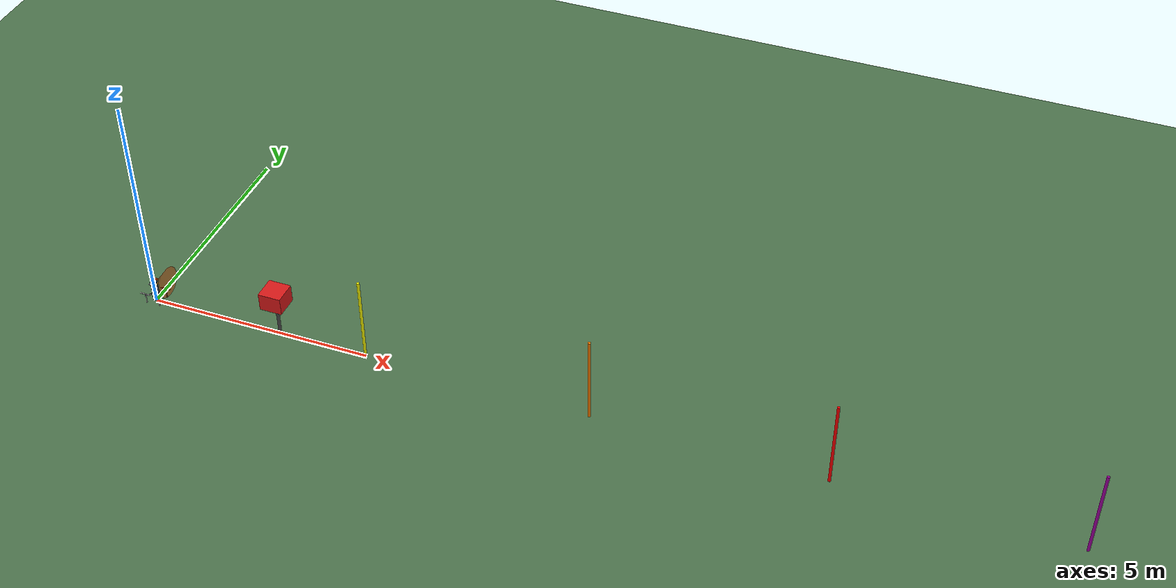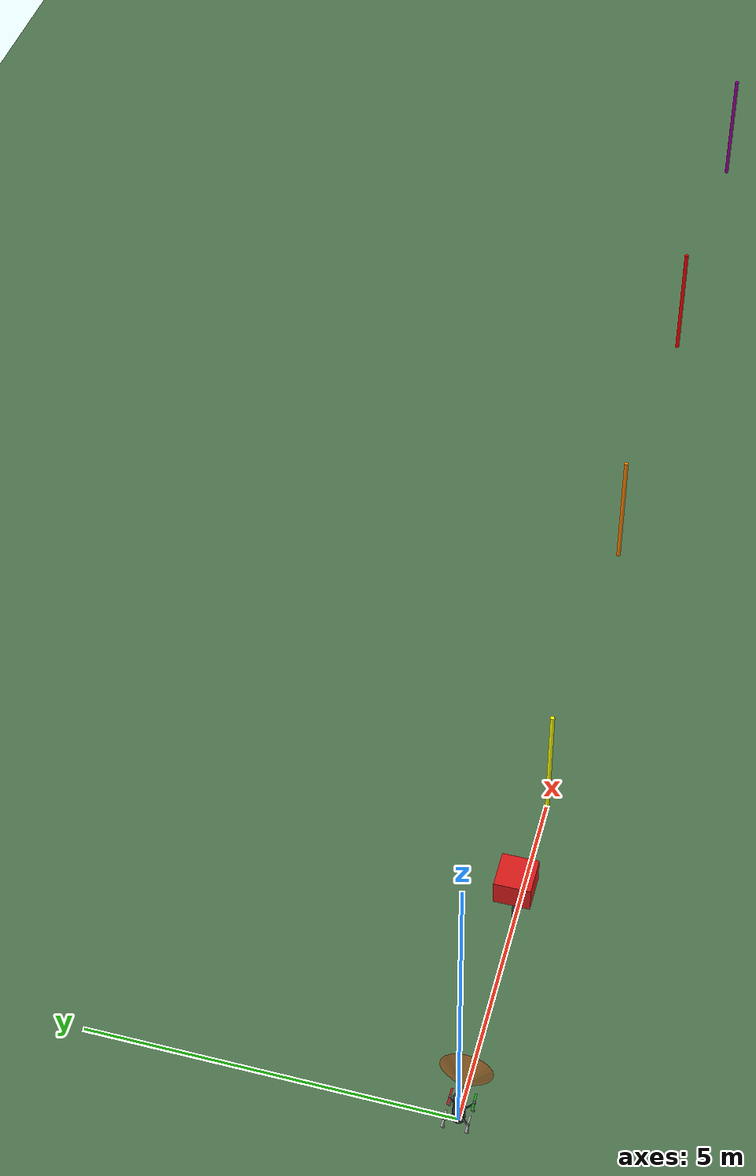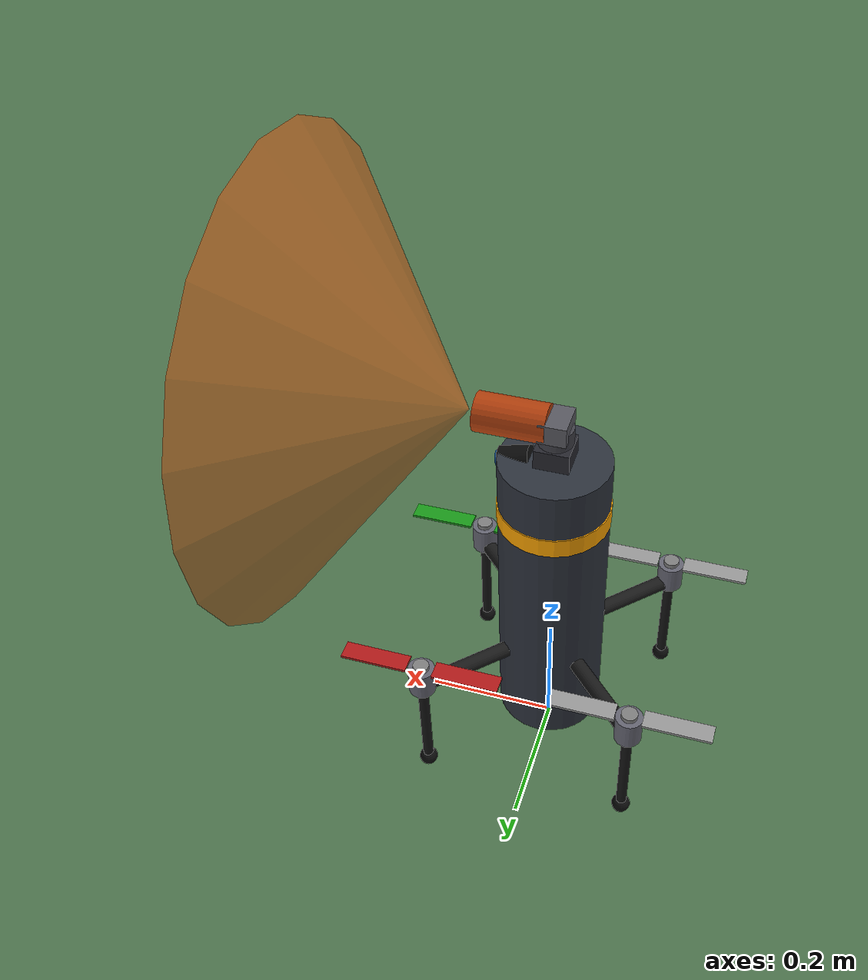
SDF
<?xml version="1.0" ?>
<sdf version="1.9">
  <world name="bullet_net_test">
    <physics name="1ms" type="ignore">
      <max_step_size>0.001</max_step_size>
      <real_time_factor>1.0</real_time_factor>
    </physics>

    <plugin filename="gz-sim-physics-system"
      name="gz::sim::systems::Physics">
    </plugin>
    <plugin filename="gz-sim-user-commands-system"
      name="gz::sim::systems::UserCommands">
    </plugin>
    <plugin filename="gz-sim-scene-broadcaster-system"
      name="gz::sim::systems::SceneBroadcaster">
    </plugin>
    <plugin filename="gz-sim-imu-system"
      name="gz::sim::systems::Imu">
    </plugin>
    <plugin filename="gz-sim-navsat-system"
      name="gz::sim::systems::NavSat">
    </plugin>
    <plugin filename="gz-sim-sensors-system"
      name="gz::sim::systems::Sensors">
      <render_engine>ogre2</render_engine>
    </plugin>
    <plugin filename="gz-sim-contact-system"
      name="gz::sim::systems::Contact">
    </plugin>

    <plugin filename="NetCapturePlugin" name="avci::NetCapturePlugin">
      <net_model>net_cone</net_model>
      <net_link>net_link</net_link>
      <target_model>target_box</target_model>
      <capture_topic>/net/captured</capture_topic>
      <min_speed>1.0</min_speed>
    </plugin>

    <gravity>0 0 -9.8</gravity>
    <magnetic_field>6.0e-6 2.3e-5 -4.2e-5</magnetic_field>
    <atmosphere type="adiabatic"/>

    <scene>
      <ambient>0.5 0.5 0.5</ambient>
      <background>0.6 0.7 0.9</background>
      <shadows>false</shadows>
    </scene>

    <light type="directional" name="sun">
      <cast_shadows>false</cast_shadows>
      <pose>0 0 10 0 0 0</pose>
      <diffuse>0.9 0.9 0.9 1</diffuse>
      <specular>0.2 0.2 0.2 1</specular>
      <direction>-0.5 0.1 -0.9</direction>
    </light>

    <model name="ground_plane">
      <static>true</static>
      <link name="link">
        <collision name="collision">
          <geometry><plane><normal>0 0 1</normal><size>500 500</size></plane></geometry>
        </collision>
        <visual name="visual">
          <geometry><plane><normal>0 0 1</normal><size>500 500</size></plane></geometry>
          <material>
            <ambient>0.3 0.45 0.3 1</ambient>
            <diffuse>0.3 0.45 0.3 1</diffuse>
          </material>
        </visual>
      </link>
    </model>

    <!-- Menzil olcumu icin her 5 m'de bir isaret direk -->
    <model name="range_markers">
      <static>true</static>
      <link name="link">
        <visual name="m5">
          <pose>5 0 1 0 0 0</pose>
          <geometry><cylinder><radius>0.03</radius><length>2</length></cylinder></geometry>
          <material><ambient>1 1 0 1</ambient><diffuse>1 1 0 1</diffuse></material>
        </visual>
        <visual name="m10">
          <pose>10 0 1 0 0 0</pose>
          <geometry><cylinder><radius>0.03</radius><length>2</length></cylinder></geometry>
          <material><ambient>1 0.5 0 1</ambient><diffuse>1 0.5 0 1</diffuse></material>
        </visual>
        <visual name="m15">
          <pose>15 0 1 0 0 0</pose>
          <geometry><cylinder><radius>0.03</radius><length>2</length></cylinder></geometry>
          <material><ambient>1 0 0 1</ambient><diffuse>1 0 0 1</diffuse></material>
        </visual>
        <visual name="m20">
          <pose>20 0 1 0 0 0</pose>
          <geometry><cylinder><radius>0.03</radius><length>2</length></cylinder></geometry>
          <material><ambient>0.6 0 0.6 1</ambient><diffuse>0.6 0 0.6 1</diffuse></material>
        </visual>
      </link>
    </model>

    <include>
      <uri>model://bullet_net_interceptor</uri>
      <name>bullet_net_interceptor</name>
      <pose>0 0 0.30 0 0 0</pose>
    </include>

    <include>
      <uri>model://net_cone</uri>
      <name>net_cone</name>
      <pose>0.12 0 0.61 0 0 0</pose>
    </include>

    <model name="target_pole">
      <static>true</static>
      <pose>3 0 0 0 0 0</pose>
      <link name="link">
        <collision name="collision">
          <pose>0 0 0.40 0 0 0</pose>
          <geometry><cylinder><radius>0.035</radius><length>0.80</length></cylinder></geometry>
        </collision>
        <visual name="visual">
          <pose>0 0 0.40 0 0 0</pose>
          <geometry><cylinder><radius>0.035</radius><length>0.80</length></cylinder></geometry>
          <material><ambient>0.3 0.3 0.3 1</ambient><diffuse>0.3 0.3 0.3 1</diffuse></material>
        </visual>
      </link>
    </model>

    <include>
      <uri>model://target_box</uri>
      <name>target_box</name>
      <!-- z: 0 derece tiltle atilan agin x=3 m'deki OLCULEN yuksekligi -->
      <pose>3 0 1.00 0 0 0</pose>
    </include>

    <!-- Aksiyon kamerasi: 52_action_shots.py bundan kare alir -->
    <model name="action_camera">
      <static>true</static>
      <pose>3.0 -7.0 1.4 0 0.02 1.5708</pose>
      <link name="link">
        <sensor name="cam" type="camera">
          <always_on>1</always_on>
          <update_rate>30</update_rate>
          <topic>/action/view</topic>
          <camera>
            <horizontal_fov>1.15</horizontal_fov>
            <image><width>1440</width><height>810</height><format>R8G8B8</format></image>
            <clip><near>0.05</near><far>200</far></clip>
          </camera>
        </sensor>
      </link>
    </model>

  </world>
</sdf>

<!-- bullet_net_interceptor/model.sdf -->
<sdf version="1.9">
  <model name="bullet_net_interceptor">

    <!-- =================================================================
         FUSELAGE + ARMS + LEGS  (single rigid body)
         ================================================================= -->
    <link name="base_link">
      <pose>0 0 0 0 0 0</pose>

      <inertial>
        <!-- 1.8 kg solid cylinder, r = 0.08, h = 0.50, centred on the origin.
             Ixx = Iyy = (1/12) m (3r^2 + h^2) = 0.040380
             Izz       = (1/2)  m r^2          = 0.005760           -->
        <mass>1.8</mass>
        <pose>0 0 0 0 0 0</pose>
        <inertia>
          <ixx>0.040380</ixx>
          <ixy>0</ixy>
          <ixz>0</ixz>
          <iyy>0.040380</iyy>
          <iyz>0</iyz>
          <izz>0.005760</izz>
        </inertia>
      </inertial>

      <!-- ========== fuselage ========== -->
      <collision name="fuselage_collision">
        <pose>0 0 0 0 0 0</pose>
        <geometry>
          <cylinder>
            <radius>0.08</radius>
            <length>0.50</length>
          </cylinder>
        </geometry>
        <surface>
          <friction>
            <ode>
              <mu>0.9</mu>
              <mu2>0.9</mu2>
            </ode>
          </friction>
          <contact>
            <ode>
              <kp>1e6</kp>
              <kd>100</kd>
              <max_vel>0.1</max_vel>
              <min_depth>0.001</min_depth>
            </ode>
          </contact>
        </surface>
      </collision>

      <visual name="fuselage_visual">
        <pose>0 0 0 0 0 0</pose>
        <geometry>
          <cylinder>
            <radius>0.08</radius>
            <length>0.50</length>
          </cylinder>
        </geometry>
        <material>
          <ambient>0.12 0.13 0.16 1</ambient>
          <diffuse>0.18 0.20 0.24 1</diffuse>
          <specular>0.55 0.55 0.60 1</specular>
        </material>
      </visual>

      <!-- ========== boat tail (rear taper) ========== -->
      <visual name="tail_cone_visual">
        <pose>0 0 -0.28 3.14159265 0 0</pose>
        <geometry>
          <cone>
            <radius>0.08</radius>
            <length>0.06</length>
          </cone>
        </geometry>
        <material>
          <ambient>0.10 0.10 0.12 1</ambient>
          <diffuse>0.15 0.15 0.18 1</diffuse>
        </material>
      </visual>

      <!-- ========== identification band ========== -->
      <visual name="band_visual">
        <pose>0 0 0.16 0 0 0</pose>
        <geometry>
          <cylinder>
            <radius>0.0815</radius>
            <length>0.03</length>
          </cylinder>
        </geometry>
        <material>
          <ambient>0.70 0.45 0.00 1</ambient>
          <diffuse>1.00 0.65 0.00 1</diffuse>
        </material>
      </visual>

      <!-- =========== ARM 0 : FRONT RIGHT (-45 deg) =========== -->
      <visual name="arm_0_visual">
        <pose>0.098995 -0.098995 -0.10 0 1.5707963 -0.7853982</pose>
        <geometry>
          <cylinder>
            <radius>0.012</radius>
            <length>0.16</length>
          </cylinder>
        </geometry>
        <material>
          <ambient>0.05 0.05 0.05 1</ambient>
          <diffuse>0.10 0.10 0.10 1</diffuse>
        </material>
      </visual>
      <collision name="arm_0_collision">
        <pose>0.098995 -0.098995 -0.10 0 1.5707963 -0.7853982</pose>
        <geometry>
          <cylinder>
            <radius>0.012</radius>
            <length>0.16</length>
          </cylinder>
        </geometry>
      </collision>
      <visual name="motor_pod_0_visual">
        <pose>0.155563 -0.155563 -0.085 0 0 0</pose>
        <geometry>
          <cylinder>
            <radius>0.020</radius>
            <length>0.045</length>
          </cylinder>
        </geometry>
        <material>
          <ambient>0.25 0.25 0.28 1</ambient>
          <diffuse>0.40 0.40 0.45 1</diffuse>
        </material>
      </visual>
      <visual name="leg_0_visual">
        <pose>0.155563 -0.155563 -0.19 0 0 0</pose>
        <geometry>
          <cylinder>
            <radius>0.008</radius>
            <length>0.18</length>
          </cylinder>
        </geometry>
        <material>
          <ambient>0.05 0.05 0.05 1</ambient>
          <diffuse>0.08 0.08 0.08 1</diffuse>
        </material>
      </visual>
      <collision name="foot_0_collision">
        <pose>0.155563 -0.155563 -0.28 0 0 0</pose>
        <geometry>
          <sphere>
            <radius>0.014</radius>
          </sphere>
        </geometry>
        <surface>
          <friction>
            <ode>
              <mu>1.2</mu>
              <mu2>1.2</mu2>
            </ode>
          </friction>
          <contact>
            <ode>
              <kp>1e6</kp>
              <kd>100</kd>
              <max_vel>0.1</max_vel>
              <min_depth>0.001</min_depth>
            </ode>
          </contact>
        </surface>
      </collision>
      <visual name="foot_0_visual">
        <pose>0.155563 -0.155563 -0.28 0 0 0</pose>
        <geometry>
          <sphere>
            <radius>0.014</radius>
          </sphere>
        </geometry>
        <material>
          <ambient>0.02 0.02 0.02 1</ambient>
          <diffuse>0.05 0.05 0.05 1</diffuse>
        </material>
      </visual>

      <!-- =========== ARM 1 : REAR LEFT (+135 deg) =========== -->
      <visual name="arm_1_visual">
        <pose>-0.098995 0.098995 -0.10 0 1.5707963 2.3561945</pose>
        <geometry>
          <cylinder>
            <radius>0.012</radius>
            <length>0.16</length>
          </cylinder>
        </geometry>
        <material>
          <ambient>0.05 0.05 0.05 1</ambient>
          <diffuse>0.10 0.10 0.10 1</diffuse>
        </material>
      </visual>
      <collision name="arm_1_collision">
        <pose>-0.098995 0.098995 -0.10 0 1.5707963 2.3561945</pose>
        <geometry>
          <cylinder>
            <radius>0.012</radius>
            <length>0.16</length>
          </cylinder>
        </geometry>
      </collision>
      <visual name="motor_pod_1_visual">
        <pose>-0.155563 0.155563 -0.085 0 0 0</pose>
        <geometry>
          <cylinder>
            <radius>0.020</radius>
            <length>0.045</length>
          </cylinder>
        </geometry>
        <material>
          <ambient>0.25 0.25 0.28 1</ambient>
          <diffuse>0.40 0.40 0.45 1</diffuse>
        </material>
      </visual>
      <visual name="leg_1_visual">
        <pose>-0.155563 0.155563 -0.19 0 0 0</pose>
        <geometry>
          <cylinder>
            <radius>0.008</radius>
            <length>0.18</length>
          </cylinder>
        </geometry>
        <material>
          <ambient>0.05 0.05 0.05 1</ambient>
          <diffuse>0.08 0.08 0.08 1</diffuse>
        </material>
      </visual>
      <collision name="foot_1_collision">
        <pose>-0.155563 0.155563 -0.28 0 0 0</pose>
        <geometry>
          <sphere>
            <radius>0.014</radius>
          </sphere>
        </geometry>
        <surface>
          <friction>
            <ode>
              <mu>1.2</mu>
              <mu2>1.2</mu2>
            </ode>
          </friction>
          <contact>
            <ode>
              <kp>1e6</kp>
              <kd>100</kd>
              <max_vel>0.1</max_vel>
              <min_depth>0.001</min_depth>
            </ode>
          </contact>
        </surface>
      </collision>
      <visual name="foot_1_visual">
        <pose>-0.155563 0.155563 -0.28 0 0 0</pose>
        <geometry>
          <sphere>
            <radius>0.014</radius>
          </sphere>
        </geometry>
        <material>
          <ambient>0.02 0.02 0.02 1</ambient>
          <diffuse>0.05 0.05 0.05 1</diffuse>
        </material>
      </visual>

      <!-- =========== ARM 2 : FRONT LEFT (+45 deg) =========== -->
      <visual name="arm_2_visual">
        <pose>0.098995 0.098995 -0.10 0 1.5707963 0.7853982</pose>
        <geometry>
          <cylinder>
            <radius>0.012</radius>
            <length>0.16</length>
          </cylinder>
        </geometry>
        <material>
          <ambient>0.05 0.05 0.05 1</ambient>
          <diffuse>0.10 0.10 0.10 1</diffuse>
        </material>
      </visual>
      <collision name="arm_2_collision">
        <pose>0.098995 0.098995 -0.10 0 1.5707963 0.7853982</pose>
        <geometry>
          <cylinder>
            <radius>0.012</radius>
            <length>0.16</length>
          </cylinder>
        </geometry>
      </collision>
      <visual name="motor_pod_2_visual">
        <pose>0.155563 0.155563 -0.085 0 0 0</pose>
        <geometry>
          <cylinder>
            <radius>0.020</radius>
            <length>0.045</length>
          </cylinder>
        </geometry>
        <material>
          <ambient>0.25 0.25 0.28 1</ambient>
          <diffuse>0.40 0.40 0.45 1</diffuse>
        </material>
      </visual>
      <visual name="leg_2_visual">
        <pose>0.155563 0.155563 -0.19 0 0 0</pose>
        <geometry>
          <cylinder>
            <radius>0.008</radius>
            <length>0.18</length>
          </cylinder>
        </geometry>
        <material>
          <ambient>0.05 0.05 0.05 1</ambient>
          <diffuse>0.08 0.08 0.08 1</diffuse>
        </material>
      </visual>
      <collision name="foot_2_collision">
        <pose>0.155563 0.155563 -0.28 0 0 0</pose>
        <geometry>
          <sphere>
            <radius>0.014</radius>
          </sphere>
        </geometry>
        <surface>
          <friction>
            <ode>
              <mu>1.2</mu>
              <mu2>1.2</mu2>
            </ode>
          </friction>
          <contact>
            <ode>
              <kp>1e6</kp>
              <kd>100</kd>
              <max_vel>0.1</max_vel>
              <min_depth>0.001</min_depth>
            </ode>
          </contact>
        </surface>
      </collision>
      <visual name="foot_2_visual">
        <pose>0.155563 0.155563 -0.28 0 0 0</pose>
        <geometry>
          <sphere>
            <radius>0.014</radius>
          </sphere>
        </geometry>
        <material>
          <ambient>0.02 0.02 0.02 1</ambient>
          <diffuse>0.05 0.05 0.05 1</diffuse>
        </material>
      </visual>

      <!-- =========== ARM 3 : REAR RIGHT (-135 deg) =========== -->
      <visual name="arm_3_visual">
        <pose>-0.098995 -0.098995 -0.10 0 1.5707963 -2.3561945</pose>
        <geometry>
          <cylinder>
            <radius>0.012</radius>
            <length>0.16</length>
          </cylinder>
        </geometry>
        <material>
          <ambient>0.05 0.05 0.05 1</ambient>
          <diffuse>0.10 0.10 0.10 1</diffuse>
        </material>
      </visual>
      <collision name="arm_3_collision">
        <pose>-0.098995 -0.098995 -0.10 0 1.5707963 -2.3561945</pose>
        <geometry>
          <cylinder>
            <radius>0.012</radius>
            <length>0.16</length>
          </cylinder>
        </geometry>
      </collision>
      <visual name="motor_pod_3_visual">
        <pose>-0.155563 -0.155563 -0.085 0 0 0</pose>
        <geometry>
          <cylinder>
            <radius>0.020</radius>
            <length>0.045</length>
          </cylinder>
        </geometry>
        <material>
          <ambient>0.25 0.25 0.28 1</ambient>
          <diffuse>0.40 0.40 0.45 1</diffuse>
        </material>
      </visual>
      <visual name="leg_3_visual">
        <pose>-0.155563 -0.155563 -0.19 0 0 0</pose>
        <geometry>
          <cylinder>
            <radius>0.008</radius>
            <length>0.18</length>
          </cylinder>
        </geometry>
        <material>
          <ambient>0.05 0.05 0.05 1</ambient>
          <diffuse>0.08 0.08 0.08 1</diffuse>
        </material>
      </visual>
      <collision name="foot_3_collision">
        <pose>-0.155563 -0.155563 -0.28 0 0 0</pose>
        <geometry>
          <sphere>
            <radius>0.014</radius>
          </sphere>
        </geometry>
        <surface>
          <friction>
            <ode>
              <mu>1.2</mu>
              <mu2>1.2</mu2>
            </ode>
          </friction>
          <contact>
            <ode>
              <kp>1e6</kp>
              <kd>100</kd>
              <max_vel>0.1</max_vel>
              <min_depth>0.001</min_depth>
            </ode>
          </contact>
        </surface>
      </collision>
      <visual name="foot_3_visual">
        <pose>-0.155563 -0.155563 -0.28 0 0 0</pose>
        <geometry>
          <sphere>
            <radius>0.014</radius>
          </sphere>
        </geometry>
        <material>
          <ambient>0.02 0.02 0.02 1</ambient>
          <diffuse>0.05 0.05 0.05 1</diffuse>
        </material>
      </visual>
    </link>

    <!-- =================================================================
         IMU
         ================================================================= -->
    <link name="imu_link">
      <pose>0 0 0 0 0 0</pose>
      <inertial>
        <mass>0.010</mass>
        <inertia>
          <ixx>1.0e-06</ixx>
          <ixy>0</ixy>
          <ixz>0</ixz>
          <iyy>1.0e-06</iyy>
          <iyz>0</iyz>
          <izz>1.0e-06</izz>
        </inertia>
      </inertial>

      <sensor name="imu_sensor" type="imu">
        <gz_frame_id>imu_link</gz_frame_id>
        <pose>0 0 0 3.14159265 0 0</pose>
        <always_on>1</always_on>
        <update_rate>1000</update_rate>
        <imu>
          <angular_velocity>
            <x>
              <noise type="gaussian">
                <mean>0</mean>
                <stddev>0.0003394</stddev>
                <bias_mean>0.0000075</bias_mean>
                <bias_stddev>0.0000008</bias_stddev>
              </noise>
            </x>
            <y>
              <noise type="gaussian">
                <mean>0</mean>
                <stddev>0.0003394</stddev>
                <bias_mean>0.0000075</bias_mean>
                <bias_stddev>0.0000008</bias_stddev>
              </noise>
            </y>
            <z>
              <noise type="gaussian">
                <mean>0</mean>
                <stddev>0.0003394</stddev>
                <bias_mean>0.0000075</bias_mean>
                <bias_stddev>0.0000008</bias_stddev>
              </noise>
            </z>
          </angular_velocity>
          <linear_acceleration>
            <x>
              <noise type="gaussian">
                <mean>0</mean>
                <stddev>0.004</stddev>
                <bias_mean>0.1</bias_mean>
                <bias_stddev>0.001</bias_stddev>
              </noise>
            </x>
            <y>
              <noise type="gaussian">
                <mean>0</mean>
                <stddev>0.004</stddev>
                <bias_mean>0.1</bias_mean>
                <bias_stddev>0.001</bias_stddev>
              </noise>
            </y>
            <z>
              <noise type="gaussian">
                <mean>0</mean>
                <stddev>0.004</stddev>
                <bias_mean>0.1</bias_mean>
                <bias_stddev>0.001</bias_stddev>
              </noise>
            </z>
          </linear_acceleration>
        </imu>
      </sensor>
    </link>

    <joint name="imu_joint" type="fixed">
      <parent>base_link</parent>
      <child>imu_link</child>
    </joint>

    <link name="camera_link">
      <pose>0.055 0 0.24 0 0.2617994 0</pose>
      <inertial>
        <mass>0.030</mass>
        <inertia>
          <ixx>1.0e-05</ixx>
          <ixy>0</ixy>
          <ixz>0</ixz>
          <iyy>1.0e-05</iyy>
          <iyz>0</iyz>
          <izz>1.0e-05</izz>
        </inertia>
      </inertial>

      <visual name="camera_housing_visual">
        <pose>0 0 0 0 1.5707963 0</pose>
        <geometry>
          <cylinder>
            <radius>0.018</radius>
            <length>0.045</length>
          </cylinder>
        </geometry>
        <material>
          <ambient>0.02 0.02 0.02 1</ambient>
          <diffuse>0.05 0.05 0.05 1</diffuse>
          <specular>0.2 0.2 0.2 1</specular>
        </material>
      </visual>
      <visual name="camera_lens_visual">
        <pose>0.024 0 0 0 1.5707963 0</pose>
        <geometry>
          <cylinder>
            <radius>0.013</radius>
            <length>0.006</length>
          </cylinder>
        </geometry>
        <material>
          <ambient>0.00 0.10 0.20 1</ambient>
          <diffuse>0.05 0.30 0.55 1</diffuse>
          <specular>0.9 0.9 0.9 1</specular>
        </material>
      </visual>

      <sensor name="target_lock_camera" type="camera">
        <pose>0 0 0 0 0 0</pose>
        <always_on>1</always_on>
        <update_rate>60</update_rate>
        <visualize>1</visualize>
        <topic>bullet_net_interceptor/nose_camera/image</topic>
        <camera name="nose_cam">
          <horizontal_fov>1.221730</horizontal_fov>
          <image>
            <width>1280</width>
            <height>720</height>
            <format>R8G8B8</format>
          </image>
          <clip>
            <near>0.05</near>
            <far>3000</far>
          </clip>
          <noise>
            <type>gaussian</type>
            <mean>0.0</mean>
            <stddev>0.005</stddev>
          </noise>
          <lens>
            <intrinsics>
              <fx>929.0</fx>
              <fy>929.0</fy>
              <cx>640.0</cx>
              <cy>360.0</cy>
              <s>0.0</s>
            </intrinsics>
          </lens>
          <optical_frame_id>camera_optical_frame</optical_frame_id>
        </camera>
      </sensor>
    </link>

    <joint name="camera_joint" type="fixed">
      <parent>base_link</parent>
      <child>camera_link</child>
    </joint>

    <link name="rotor_0">
      <pose>0.155563 -0.155563 -0.06 0 0 0</pose>
      <inertial>
        <mass>0.025</mass>
        <inertia>
          <ixx>6.0e-05</ixx>
          <ixy>0</ixy>
          <ixz>0</ixz>
          <iyy>6.0e-05</iyy>
          <iyz>0</iyz>
          <izz>1.2e-04</izz>
        </inertia>
      </inertial>
      <visual name="rotor_0_hub">
        <geometry>
          <cylinder>
            <radius>0.012</radius>
            <length>0.010</length>
          </cylinder>
        </geometry>
        <material>
          <ambient>0.30 0.30 0.30 1</ambient>
          <diffuse>0.50 0.50 0.50 1</diffuse>
        </material>
      </visual>
      <visual name="rotor_0_blade_1">
        <pose>0.070 0 0 0 0 0</pose>
        <geometry>
          <box>
            <size>0.10 0.028 0.004</size>
          </box>
        </geometry>
        <material>
          <ambient>0.05 0.30 0.05 1</ambient>
          <diffuse>0.10 0.60 0.10 1</diffuse>
        </material>
      </visual>
      <visual name="rotor_0_blade_2">
        <pose>-0.070 0 0 0 0 0</pose>
        <geometry>
          <box>
            <size>0.10 0.028 0.004</size>
          </box>
        </geometry>
        <material>
          <ambient>0.05 0.30 0.05 1</ambient>
          <diffuse>0.10 0.60 0.10 1</diffuse>
        </material>
      </visual>
      <collision name="rotor_0_collision">
        <geometry>
          <cylinder>
            <radius>0.120</radius>
            <length>0.005</length>
          </cylinder>
        </geometry>
        <surface>
          <contact>
            <ode/>
          </contact>
          <friction>
            <ode/>
          </friction>
        </surface>
      </collision>
    </link>

    <joint name="rotor_0_joint" type="revolute">
      <parent>base_link</parent>
      <child>rotor_0</child>
      <axis>
        <xyz>0 0 1</xyz>
        <limit>
          <lower>-1e16</lower>
          <upper>1e16</upper>
        </limit>
        <dynamics>
          <damping>0.004</damping>
        </dynamics>
      </axis>
    </joint>

    <link name="rotor_1">
      <pose>-0.155563 0.155563 -0.06 0 0 0</pose>
      <inertial>
        <mass>0.025</mass>
        <inertia>
          <ixx>6.0e-05</ixx>
          <ixy>0</ixy>
          <ixz>0</ixz>
          <iyy>6.0e-05</iyy>
          <iyz>0</iyz>
          <izz>1.2e-04</izz>
        </inertia>
      </inertial>
      <visual name="rotor_1_hub">
        <geometry>
          <cylinder>
            <radius>0.012</radius>
            <length>0.010</length>
          </cylinder>
        </geometry>
        <material>
          <ambient>0.30 0.30 0.30 1</ambient>
          <diffuse>0.50 0.50 0.50 1</diffuse>
        </material>
      </visual>
      <visual name="rotor_1_blade_1">
        <pose>0.070 0 0 0 0 0</pose>
        <geometry>
          <box>
            <size>0.10 0.028 0.004</size>
          </box>
        </geometry>
        <material>
          <ambient>0.30 0.30 0.30 1</ambient>
          <diffuse>0.60 0.60 0.60 1</diffuse>
        </material>
      </visual>
      <visual name="rotor_1_blade_2">
        <pose>-0.070 0 0 0 0 0</pose>
        <geometry>
          <box>
            <size>0.10 0.028 0.004</size>
          </box>
        </geometry>
        <material>
          <ambient>0.30 0.30 0.30 1</ambient>
          <diffuse>0.60 0.60 0.60 1</diffuse>
        </material>
      </visual>
      <collision name="rotor_1_collision">
        <geometry>
          <cylinder>
            <radius>0.120</radius>
            <length>0.005</length>
          </cylinder>
        </geometry>
        <surface>
          <contact>
            <ode/>
          </contact>
          <friction>
            <ode/>
          </friction>
        </surface>
      </collision>
    </link>

    <joint name="rotor_1_joint" type="revolute">
      <parent>base_link</parent>
      <child>rotor_1</child>
      <axis>
        <xyz>0 0 1</xyz>
        <limit>
          <lower>-1e16</lower>
          <upper>1e16</upper>
        </limit>
        <dynamics>
          <damping>0.004</damping>
        </dynamics>
      </axis>
    </joint>

    <link name="rotor_2">
      <pose>0.155563 0.155563 -0.06 0 0 0</pose>
      <inertial>
        <mass>0.025</mass>
        <inertia>
          <ixx>6.0e-05</ixx>
          <ixy>0</ixy>
          <ixz>0</ixz>
          <iyy>6.0e-05</iyy>
          <iyz>0</iyz>
          <izz>1.2e-04</izz>
        </inertia>
      </inertial>
      <visual name="rotor_2_hub">
        <geometry>
          <cylinder>
            <radius>0.012</radius>
            <length>0.010</length>
          </cylinder>
        </geometry>
        <material>
          <ambient>0.30 0.30 0.30 1</ambient>
          <diffuse>0.50 0.50 0.50 1</diffuse>
        </material>
      </visual>
      <visual name="rotor_2_blade_1">
        <pose>0.070 0 0 0 0 0</pose>
        <geometry>
          <box>
            <size>0.10 0.028 0.004</size>
          </box>
        </geometry>
        <material>
          <ambient>0.30 0.05 0.05 1</ambient>
          <diffuse>0.70 0.10 0.10 1</diffuse>
        </material>
      </visual>
      <visual name="rotor_2_blade_2">
        <pose>-0.070 0 0 0 0 0</pose>
        <geometry>
          <box>
            <size>0.10 0.028 0.004</size>
          </box>
        </geometry>
        <material>
          <ambient>0.30 0.05 0.05 1</ambient>
          <diffuse>0.70 0.10 0.10 1</diffuse>
        </material>
      </visual>
      <collision name="rotor_2_collision">
        <geometry>
          <cylinder>
            <radius>0.120</radius>
            <length>0.005</length>
          </cylinder>
        </geometry>
        <surface>
          <contact>
            <ode/>
          </contact>
          <friction>
            <ode/>
          </friction>
        </surface>
      </collision>
    </link>

    <joint name="rotor_2_joint" type="revolute">
      <parent>base_link</parent>
      <child>rotor_2</child>
      <axis>
        <xyz>0 0 1</xyz>
        <limit>
          <lower>-1e16</lower>
          <upper>1e16</upper>
        </limit>
        <dynamics>
          <damping>0.004</damping>
        </dynamics>
      </axis>
    </joint>

    <link name="rotor_3">
      <pose>-0.155563 -0.155563 -0.06 0 0 0</pose>
      <inertial>
        <mass>0.025</mass>
        <inertia>
          <ixx>6.0e-05</ixx>
          <ixy>0</ixy>
          <ixz>0</ixz>
          <iyy>6.0e-05</iyy>
          <iyz>0</iyz>
          <izz>1.2e-04</izz>
        </inertia>
      </inertial>
      <visual name="rotor_3_hub">
        <geometry>
          <cylinder>
            <radius>0.012</radius>
            <length>0.010</length>
          </cylinder>
        </geometry>
        <material>
          <ambient>0.30 0.30 0.30 1</ambient>
          <diffuse>0.50 0.50 0.50 1</diffuse>
        </material>
      </visual>
      <visual name="rotor_3_blade_1">
        <pose>0.070 0 0 0 0 0</pose>
        <geometry>
          <box>
            <size>0.10 0.028 0.004</size>
          </box>
        </geometry>
        <material>
          <ambient>0.30 0.30 0.30 1</ambient>
          <diffuse>0.60 0.60 0.60 1</diffuse>
        </material>
      </visual>
      <visual name="rotor_3_blade_2">
        <pose>-0.070 0 0 0 0 0</pose>
        <geometry>
          <box>
            <size>0.10 0.028 0.004</size>
          </box>
        </geometry>
        <material>
          <ambient>0.30 0.30 0.30 1</ambient>
          <diffuse>0.60 0.60 0.60 1</diffuse>
        </material>
      </visual>
      <collision name="rotor_3_collision">
        <geometry>
          <cylinder>
            <radius>0.120</radius>
            <length>0.005</length>
          </cylinder>
        </geometry>
        <surface>
          <contact>
            <ode/>
          </contact>
          <friction>
            <ode/>
          </friction>
        </surface>
      </collision>
    </link>

    <joint name="rotor_3_joint" type="revolute">
      <parent>base_link</parent>
      <child>rotor_3</child>
      <axis>
        <xyz>0 0 1</xyz>
        <limit>
          <lower>-1e16</lower>
          <upper>1e16</upper>
        </limit>
        <dynamics>
          <damping>0.004</damping>
        </dynamics>
      </axis>
    </joint>

    <!-- =================================================================
         PLUGINS
         ================================================================= -->

    <plugin filename="gz-sim-joint-state-publisher-system"
            name="gz::sim::systems::JointStatePublisher">
    </plugin>

    <!-- rotor_0 : CCW -->
    <plugin filename="gz-sim-lift-drag-system"
            name="gz::sim::systems::LiftDrag">
      <a0>0.20</a0>
      <alpha_stall>1.4</alpha_stall>
      <cla>4.2500</cla>
      <cda>0.10</cda>
      <cma>0.0</cma>
      <cla_stall>-0.025</cla_stall>
      <cda_stall>0.0</cda_stall>
      <cma_stall>0.0</cma_stall>
      <area>0.0025</area>
      <air_density>1.2041</air_density>
      <cp>0.084 0 0</cp>
      <forward>0 1 0</forward>
      <upward>0 0 1</upward>
      <link_name>rotor_0</link_name>
    </plugin>
    <plugin filename="gz-sim-lift-drag-system"
            name="gz::sim::systems::LiftDrag">
      <a0>0.20</a0>
      <alpha_stall>1.4</alpha_stall>
      <cla>4.2500</cla>
      <cda>0.10</cda>
      <cma>0.0</cma>
      <cla_stall>-0.025</cla_stall>
      <cda_stall>0.0</cda_stall>
      <cma_stall>0.0</cma_stall>
      <area>0.0025</area>
      <air_density>1.2041</air_density>
      <cp>-0.084 0 0</cp>
      <forward>0 -1 0</forward>
      <upward>0 0 1</upward>
      <link_name>rotor_0</link_name>
    </plugin>

    <!-- rotor_1 : CCW -->
    <plugin filename="gz-sim-lift-drag-system"
            name="gz::sim::systems::LiftDrag">
      <a0>0.20</a0>
      <alpha_stall>1.4</alpha_stall>
      <cla>4.2500</cla>
      <cda>0.10</cda>
      <cma>0.0</cma>
      <cla_stall>-0.025</cla_stall>
      <cda_stall>0.0</cda_stall>
      <cma_stall>0.0</cma_stall>
      <area>0.0025</area>
      <air_density>1.2041</air_density>
      <cp>0.084 0 0</cp>
      <forward>0 1 0</forward>
      <upward>0 0 1</upward>
      <link_name>rotor_1</link_name>
    </plugin>
    <plugin filename="gz-sim-lift-drag-system"
            name="gz::sim::systems::LiftDrag">
      <a0>0.20</a0>
      <alpha_stall>1.4</alpha_stall>
      <cla>4.2500</cla>
      <cda>0.10</cda>
      <cma>0.0</cma>
      <cla_stall>-0.025</cla_stall>
      <cda_stall>0.0</cda_stall>
      <cma_stall>0.0</cma_stall>
      <area>0.0025</area>
      <air_density>1.2041</air_density>
      <cp>-0.084 0 0</cp>
      <forward>0 -1 0</forward>
      <upward>0 0 1</upward>
      <link_name>rotor_1</link_name>
    </plugin>

    <!-- rotor_2 : CW (mirrored forward) -->
    <plugin filename="gz-sim-lift-drag-system"
            name="gz::sim::systems::LiftDrag">
      <a0>0.20</a0>
      <alpha_stall>1.4</alpha_stall>
      <cla>4.2500</cla>
      <cda>0.10</cda>
      <cma>0.0</cma>
      <cla_stall>-0.025</cla_stall>
      <cda_stall>0.0</cda_stall>
      <cma_stall>0.0</cma_stall>
      <area>0.0025</area>
      <air_density>1.2041</air_density>
      <cp>0.084 0 0</cp>
      <forward>0 -1 0</forward>
      <upward>0 0 1</upward>
      <link_name>rotor_2</link_name>
    </plugin>
    <plugin filename="gz-sim-lift-drag-system"
            name="gz::sim::systems::LiftDrag">
      <a0>0.20</a0>
      <alpha_stall>1.4</alpha_stall>
      <cla>4.2500</cla>
      <cda>0.10</cda>
      <cma>0.0</cma>
      <cla_stall>-0.025</cla_stall>
      <cda_stall>0.0</cda_stall>
      <cma_stall>0.0</cma_stall>
      <area>0.0025</area>
      <air_density>1.2041</air_density>
      <cp>-0.084 0 0</cp>
      <forward>0 1 0</forward>
      <upward>0 0 1</upward>
      <link_name>rotor_2</link_name>
    </plugin>

    <!-- rotor_3 : CW (mirrored forward) -->
    <plugin filename="gz-sim-lift-drag-system"
            name="gz::sim::systems::LiftDrag">
      <a0>0.20</a0>
      <alpha_stall>1.4</alpha_stall>
      <cla>4.2500</cla>
      <cda>0.10</cda>
      <cma>0.0</cma>
      <cla_stall>-0.025</cla_stall>
      <cda_stall>0.0</cda_stall>
      <cma_stall>0.0</cma_stall>
      <area>0.0025</area>
      <air_density>1.2041</air_density>
      <cp>0.084 0 0</cp>
      <forward>0 -1 0</forward>
      <upward>0 0 1</upward>
      <link_name>rotor_3</link_name>
    </plugin>
    <plugin filename="gz-sim-lift-drag-system"
            name="gz::sim::systems::LiftDrag">
      <a0>0.20</a0>
      <alpha_stall>1.4</alpha_stall>
      <cla>4.2500</cla>
      <cda>0.10</cda>
      <cma>0.0</cma>
      <cla_stall>-0.025</cla_stall>
      <cda_stall>0.0</cda_stall>
      <cma_stall>0.0</cma_stall>
      <area>0.0025</area>
      <air_density>1.2041</air_density>
      <cp>-0.084 0 0</cp>
      <forward>0 1 0</forward>
      <upward>0 0 1</upward>
      <link_name>rotor_3</link_name>
    </plugin>

    <!-- Required so the ArduPilot plugin can drive the rotor joints -->
    <plugin filename="gz-sim-apply-joint-force-system"
            name="gz::sim::systems::ApplyJointForce">
      <joint_name>rotor_0_joint</joint_name>
    </plugin>
    <plugin filename="gz-sim-apply-joint-force-system"
            name="gz::sim::systems::ApplyJointForce">
      <joint_name>rotor_1_joint</joint_name>
    </plugin>
    <plugin filename="gz-sim-apply-joint-force-system"
            name="gz::sim::systems::ApplyJointForce">
      <joint_name>rotor_2_joint</joint_name>
    </plugin>
    <plugin filename="gz-sim-apply-joint-force-system"
            name="gz::sim::systems::ApplyJointForce">
      <joint_name>rotor_3_joint</joint_name>
    </plugin>

    <plugin name="ArduPilotPlugin" filename="ArduPilotPlugin">
      <!-- Port settings -->
      <fdm_addr>127.0.0.1</fdm_addr>
      <fdm_port_in>9032</fdm_port_in>
      <fdm_port_out>9033</fdm_port_out>
      <connectionTimeoutMaxCount>5</connectionTimeoutMaxCount>
      <lock_step>1</lock_step>
      <no_time_sync>1</no_time_sync>
      <have_32_channels>0</have_32_channels>

      <!-- Frame conventions: Gazebo ENU/FLU -> ArduPilot NED/FRD -->
      <modelXYZToAirplaneXForwardZDown degrees="true">0 0 0 180 0 0</modelXYZToAirplaneXForwardZDown>
      <gazeboXYZToNED degrees="true">0 0 0 180 0 90</gazeboXYZToNED>

      <!-- Sensors -->
      <!-- Scoped name is resolved relative to this model entity, so the
           model name itself must NOT be repeated here. -->
      <imuName>imu_link::imu_sensor</imuName>

      <!-- Motor 1 : front right, CCW -->
      <control channel="0">
        <jointName>rotor_0_joint</jointName>
        <useForce>1</useForce>
        <multiplier>1550</multiplier>
        <offset>0</offset>
        <servo_min>1100</servo_min>
        <servo_max>1900</servo_max>
        <type>VELOCITY</type>
        <p_gain>0.20</p_gain>
        <i_gain>0</i_gain>
        <d_gain>0</d_gain>
        <i_max>0</i_max>
        <i_min>0</i_min>
        <cmd_max>6.0</cmd_max>
        <cmd_min>-6.0</cmd_min>
        <controlVelocitySlowdownSim>1</controlVelocitySlowdownSim>
      </control>

      <!-- Motor 2 : rear left, CCW -->
      <control channel="1">
        <jointName>rotor_1_joint</jointName>
        <useForce>1</useForce>
        <multiplier>1550</multiplier>
        <offset>0</offset>
        <servo_min>1100</servo_min>
        <servo_max>1900</servo_max>
        <type>VELOCITY</type>
        <p_gain>0.20</p_gain>
        <i_gain>0</i_gain>
        <d_gain>0</d_gain>
        <i_max>0</i_max>
        <i_min>0</i_min>
        <cmd_max>6.0</cmd_max>
        <cmd_min>-6.0</cmd_min>
        <controlVelocitySlowdownSim>1</controlVelocitySlowdownSim>
      </control>

      <!-- Motor 3 : front left, CW -->
      <control channel="2">
        <jointName>rotor_2_joint</jointName>
        <useForce>1</useForce>
        <multiplier>-1550</multiplier>
        <offset>0</offset>
        <servo_min>1100</servo_min>
        <servo_max>1900</servo_max>
        <type>VELOCITY</type>
        <p_gain>0.20</p_gain>
        <i_gain>0</i_gain>
        <d_gain>0</d_gain>
        <i_max>0</i_max>
        <i_min>0</i_min>
        <cmd_max>6.0</cmd_max>
        <cmd_min>-6.0</cmd_min>
        <controlVelocitySlowdownSim>1</controlVelocitySlowdownSim>
      </control>

      <!-- Motor 4 : rear right, CW -->
      <control channel="3">
        <jointName>rotor_3_joint</jointName>
        <useForce>1</useForce>
        <multiplier>-1550</multiplier>
        <offset>0</offset>
        <servo_min>1100</servo_min>
        <servo_max>1900</servo_max>
        <type>VELOCITY</type>
        <p_gain>0.20</p_gain>
        <i_gain>0</i_gain>
        <d_gain>0</d_gain>
        <i_max>0</i_max>
        <i_min>0</i_min>
        <cmd_max>6.0</cmd_max>
        <cmd_min>-6.0</cmd_min>
        <controlVelocitySlowdownSim>1</controlVelocitySlowdownSim>
      </control>
    </plugin>

    <!-- TARET + AG FIRLATICI                                             -->
    <!-- scripts/21_build_bullet_interceptor.py tarafindan eklendi         -->
    <!-- Govde DIKEY duruyor (+Z burun yonu) ama taret ILERI (+X) atiyor:  -->
    <!-- muzzle_link pitch=90 ile yatirilmis, kendi +Z'si govde +X'ine     -->
    <!-- bakar; launch_axis bu yuzden "0 0 1".                            -->

    <!-- Taret tabani: govdenin tepesine (burun konisinin yerine) sabit -->
    <link name="turret_base_link">
      <pose>0.0 0.0 0.265 0 0 0</pose>
      <inertial>
        <mass>0.10</mass>
        <inertia>
          <ixx>4e-5</ixx><ixy>0</ixy><ixz>0</ixz>
          <iyy>4e-5</iyy><iyz>0</iyz>
          <izz>4e-5</izz>
        </inertia>
      </inertial>
      <collision name="turret_base_collision">
        <geometry><box><size>0.05 0.05 0.03</size></box></geometry>
      </collision>
      <visual name="turret_base_visual">
        <geometry><box><size>0.05 0.05 0.03</size></box></geometry>
        <material>
          <ambient>0.15 0.15 0.18 1</ambient>
          <diffuse>0.15 0.15 0.18 1</diffuse>
        </material>
      </visual>
    </link>

    <joint name="turret_mount_joint" type="fixed">
      <parent>base_link</parent>
      <child>turret_base_link</child>
    </joint>

    <!-- 1. eksen: PAN (yaw, Z ekseni) -->
    <link name="turret_yaw_link">
      <pose>0.0 0.0 0.295 0 0 0</pose>
      <inertial>
        <mass>0.08</mass>
        <inertia>
          <ixx>3e-5</ixx><ixy>0</ixy><ixz>0</ixz>
          <iyy>3e-5</iyy><iyz>0</iyz>
          <izz>3e-5</izz>
        </inertia>
      </inertial>
      <collision name="turret_yaw_collision">
        <geometry><cylinder><radius>0.025</radius><length>0.025</length></cylinder></geometry>
      </collision>
      <visual name="turret_yaw_visual">
        <geometry><cylinder><radius>0.025</radius><length>0.025</length></cylinder></geometry>
        <material>
          <ambient>0.25 0.25 0.28 1</ambient>
          <diffuse>0.25 0.25 0.28 1</diffuse>
        </material>
      </visual>
    </link>

    <joint name="turret_yaw_joint" type="revolute">
      <parent>turret_base_link</parent>
      <child>turret_yaw_link</child>
      <axis>
        <xyz>0 0 1</xyz>
        <limit>
          <!-- +-100 derece: govde donmeden genis tarama (kaynak modelle ayni) -->
          <lower>-1.745</lower>
          <upper>1.745</upper>
          <effort>25.0</effort>
          <velocity>6.0</velocity>
        </limit>
        <dynamics><damping>0.02</damping></dynamics>
      </axis>
    </joint>

    <!-- 2. eksen: TILT (pitch, Y ekseni) -->
    <link name="turret_pitch_link">
      <pose>0.0 0.0 0.31 0 0 0</pose>
      <inertial>
        <mass>0.10</mass>
        <inertia>
          <ixx>4e-5</ixx><ixy>0</ixy><ixz>0</ixz>
          <iyy>6e-5</iyy><iyz>0</iyz>
          <izz>6e-5</izz>
        </inertia>
      </inertial>
      <collision name="turret_pitch_collision">
        <geometry><box><size>0.04 0.05 0.03</size></box></geometry>
      </collision>
      <visual name="turret_pitch_visual">
        <geometry><box><size>0.04 0.05 0.03</size></box></geometry>
        <material>
          <ambient>0.35 0.35 0.38 1</ambient>
          <diffuse>0.35 0.35 0.38 1</diffuse>
        </material>
      </visual>
    </link>

    <joint name="turret_pitch_joint" type="revolute">
      <parent>turret_yaw_link</parent>
      <child>turret_pitch_link</child>
      <axis>
        <xyz>0 1 0</xyz>
        <limit>
          <!-- -60 (yukari) .. +30 (asagi) derece; kaynak modelle ayni.
               SDF'te +pitch namluyu asagi indirir. -->
          <lower>-1.047</lower>
          <upper>0.524</upper>
          <effort>25.0</effort>
          <velocity>6.0</velocity>
        </limit>
        <dynamics><damping>0.02</damping></dynamics>
      </axis>
    </joint>

    <!-- Namlu: agin cikis noktasi. Ekseni +X (govde ileri yonu). -->
    <link name="muzzle_link">
      <pose degrees="true">0.06 0.0 0.31 0 90 0</pose>
      <inertial>
        <mass>0.07</mass>
        <inertia>
          <ixx>2e-5</ixx><ixy>0</ixy><ixz>0</ixz>
          <iyy>2e-5</iyy><iyz>0</iyz>
          <izz>1e-5</izz>
        </inertia>
      </inertial>
      <collision name="muzzle_collision">
        <geometry><cylinder><radius>0.028</radius><length>0.10</length></cylinder></geometry>
      </collision>
      <visual name="muzzle_visual">
        <geometry><cylinder><radius>0.028</radius><length>0.10</length></cylinder></geometry>
        <material>
          <ambient>0.7 0.25 0.05 1</ambient>
          <diffuse>0.7 0.25 0.05 1</diffuse>
        </material>
      </visual>
    </link>

    <joint name="muzzle_joint" type="fixed">
      <parent>turret_pitch_link</parent>
      <child>muzzle_link</child>
    </joint>

    <!-- ================ Taret kontrolu ================ -->
    <!-- Aci komutu: gz topic -t /model/bullet_net_interceptor/joint/turret_yaw_joint/0/cmd_pos
                       -m gz.msgs.Double -p 'data: 0.5'  -->
    <plugin filename="gz-sim-joint-position-controller-system"
      name="gz::sim::systems::JointPositionController">
      <joint_name>turret_yaw_joint</joint_name>
      <p_gain>8.0</p_gain>
      <i_gain>1.0</i_gain>
      <d_gain>0.4</d_gain>
      <i_max>2.0</i_max>
      <i_min>-2.0</i_min>
      <cmd_max>20.0</cmd_max>
      <cmd_min>-20.0</cmd_min>
    </plugin>

    <plugin filename="gz-sim-joint-position-controller-system"
      name="gz::sim::systems::JointPositionController">
      <joint_name>turret_pitch_joint</joint_name>
      <p_gain>30.0</p_gain>
      <i_gain>25.0</i_gain>
      <d_gain>1.5</d_gain>
      <i_max>15.0</i_max>
      <i_min>-15.0</i_min>
      <cmd_max>20.0</cmd_max>
      <cmd_min>-20.0</cmd_min>
    </plugin>

    <!-- ================ Ag tutucu / firlatici ================ -->
    <!--
      Ates:  gz topic -t /bullet_net_interceptor/net/fire -m gz.msgs.Double -p 'data: 20'
    -->
    <plugin filename="NetLauncherPlugin" name="avci::NetLauncherPlugin">
      <muzzle_link>muzzle_link</muzzle_link>
      <net_model>net_cone</net_model>
      <net_link>net_link</net_link>
      <fire_topic>/bullet_net_interceptor/net/fire</fire_topic>
      <muzzle_speed>20.0</muzzle_speed>
      <!-- muzzle_link pitch=90 ile duruyor; kendi +Z'si govde +X'ine bakar -->
      <launch_axis>0 0 1</launch_axis>
    </plugin>

  </model>
</sdf>

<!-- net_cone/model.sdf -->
<sdf version="1.9">
  <model name="net_cone">

    <link name="net_link">
      <inertial>
        <mass>0.30</mass>
        <!-- Ince kabuk koni yaklasimi; tam dogru degil ama menzil/balistik
             icin yeterli. Agirlik merkezi agza dogru kayik. -->
        <pose>0.15 0 0 0 0 0</pose>
        <inertia>
          <ixx>0.0012</ixx>
          <ixy>0</ixy>
          <ixz>0</ixz>
          <iyy>0.0009</iyy>
          <iyz>0</iyz>
          <izz>0.0009</izz>
        </inertia>
      </inertial>

      <collision name="net_collision">
        <pose degrees="true">0.125 0 0 0 -90 0</pose>
        <geometry>
          <cone>
            <radius>0.35</radius>
            <length>0.25</length>
          </cone>
        </geometry>
        <surface>
          <contact>
            <ode>
              <!-- Ag yumusak: hedefi sekmeden yakalamali -->
              <max_vel>0.1</max_vel>
              <min_depth>0.005</min_depth>
            </ode>
          </contact>
          <friction>
            <ode>
              <mu>1.5</mu>
              <mu2>1.5</mu2>
            </ode>
          </friction>
        </surface>
      </collision>

      <visual name="net_visual">
        <pose degrees="true">0.125 0 0 0 -90 0</pose>
        <geometry>
          <cone>
            <radius>0.35</radius>
            <length>0.25</length>
          </cone>
        </geometry>
        <material>
          <ambient>0.9 0.35 0.05 0.55</ambient>
          <diffuse>0.9 0.35 0.05 0.55</diffuse>
          <specular>0.1 0.1 0.1 1</specular>
        </material>
        <transparency>0.45</transparency>
      </visual>

      <!-- Yakalama tespiti: NetCapturePlugin bu sensoru dinler -->
      <sensor name="net_contact" type="contact">
        <always_on>true</always_on>
        <!-- Fizik adimiyla ayni hiz: 20 m/s'de 200 Hz ornekleme (5 ms = 10 cm)
             30 cm'lik hedefte temasi kacirabiliyordu. -->
        <update_rate>1000</update_rate>
        <contact>
          <collision>net_collision</collision>
        </contact>
      </sensor>
    </link>

    <plugin filename="gz-sim-lift-drag-system"
      name="gz::sim::systems::LiftDrag">
      <a0>0.0</a0>
      <cla>0.0</cla>
      <cda>0.30</cda>
      <cma>0.0</cma>
      <alpha_stall>1.5708</alpha_stall>
      <cla_stall>0.0</cla_stall>
      <cda_stall>0.30</cda_stall>
      <cma_stall>0.0</cma_stall>
      <cp>0.15 0 0</cp>
      <area>0.10</area>
      <air_density>1.2041</air_density>
      <forward>1 0 0</forward>
      <upward>0 0 1</upward>
      <link_name>net_link</link_name>
    </plugin>

  </model>
</sdf>

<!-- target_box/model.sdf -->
<sdf version="1.9">
  <model name="target_box">
    <link name="target_link">
      <inertial>
        <mass>0.7</mass>
        <!-- 0.5 x 0.5 x 0.4 m kutu icin: I = m(b^2+c^2)/12 -->
        <inertia>
          <ixx>0.0240</ixx>
          <ixy>0</ixy>
          <ixz>0</ixz>
          <iyy>0.0240</iyy>
          <iyz>0</iyz>
          <izz>0.0292</izz>
        </inertia>
      </inertial>

      <collision name="target_collision">
        <geometry><box><size>0.5 0.5 0.4</size></box></geometry>
        <surface>
          <friction><ode><mu>0.8</mu><mu2>0.8</mu2></ode></friction>
        </surface>
      </collision>

      <visual name="target_visual">
        <geometry><box><size>0.5 0.5 0.4</size></box></geometry>
        <material>
          <ambient>0.85 0.1 0.1 1</ambient>
          <diffuse>0.85 0.1 0.1 1</diffuse>
        </material>
      </visual>

      <!-- Karsi taraftan da temas gorulebilsin -->
      <sensor name="target_contact" type="contact">
        <always_on>true</always_on>
        <update_rate>1000</update_rate>
        <contact><collision>target_collision</collision></contact>
      </sensor>
    </link>
  </model>
</sdf>
